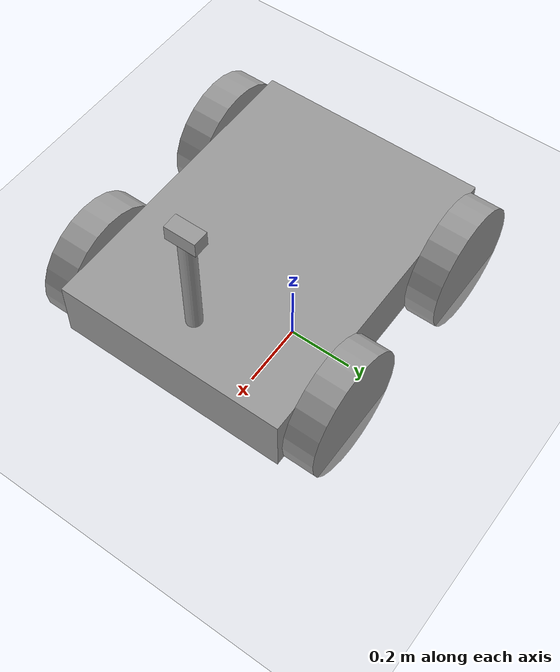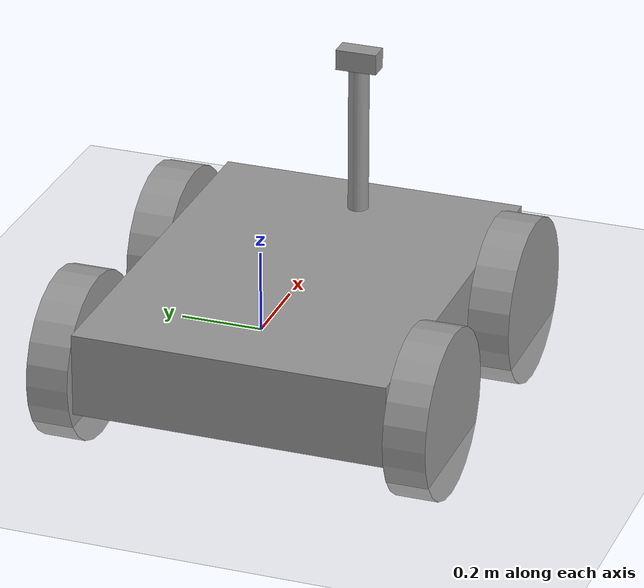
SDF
<sdf version="1.7">
 <world name="test_world">
  <include><uri>https://fuel.gazebosim.org/1.0/OpenRobotics/models/Sun</uri></include>
  <include><uri>https://fuel.gazebosim.org/1.0/OpenRobotics/models/Ground Plane</uri></include>
  <include><pose>0 0 0.4 0 0 0</pose><uri>../models/land_robot</uri></include>
  <plugin filename="ignition-gazebo-physics-system" name="ignition::gazebo::systems::Physics"/>
  <plugin filename="ignition-gazebo-sensors-system" name="ignition::gazebo::systems::Sensors">
   <render_engine>ogre</render_engine>
  </plugin>
  <plugin filename="ignition-gazebo-user-commands-system" name="ignition::gazebo::systems::UserCommands"/>
  <plugin filename="ignition-gazebo-scene-broadcaster-system" name="ignition::gazebo::systems::SceneBroadcaster"/>
 </world>
</sdf>

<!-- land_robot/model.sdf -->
<sdf version='1.7'>
    <model name='land_robot'>
        <pose>0 0 0.5 0 0.0 3.14</pose>
        <link name='chasis'>
          <inertial>
              <mass>5</mass>
              <inertia>
                <ixx>0.166667</ixx>
                <ixy>0</ixy>
                <ixz>0</ixz>
                <iyy>0.166667</iyy>
                <iyz>0</iyz>
                <izz>0.166667</izz>
              </inertia>
              <pose>0 0 0 0 -0 0</pose>
          </inertial>
          <pose>-0.110726 -0.145588 -0.265574 0 -0 0</pose>
          <gravity>1</gravity>
          <self_collide>0</self_collide>
          <kinematic>0</kinematic>
          <enable_wind>0</enable_wind>
          <visual name='visual'>
            <pose>0 0 0 0 -0 0</pose>
            <geometry>
              <box>
                <size>1 0.75 0.2</size>
              </box>
            </geometry>
            <material>
              <lighting>1</lighting>
              <script>
                <uri>file://media/materials/scripts/gazebo.material</uri>
                <name>Gazebo/Grey</name>
              </script>
              <shader type='pixel'>
                <normal_map>__default__</normal_map>
              </shader>
              <ambient>0.1 0.1 0.1 1</ambient>
              <diffuse>0.1 0.1 0.1 1</diffuse>
              <specular>0.1 0.1 0.1 1</specular>
              <emissive>0 0 0 1</emissive>
            </material>
            <transparency>0</transparency>
            <cast_shadows>1</cast_shadows>
          </visual>
          <collision name='collision'>
            <laser_retro>0</laser_retro>
            <max_contacts>10</max_contacts>
            <pose>0 0 0 0 -0 0</pose>
            <geometry>
              <box>
                <size>1 0.75 0.2</size>
              </box>
            </geometry>
            <surface>
              <friction>
                <ode>
                  <mu>1</mu>
                  <mu2>1</mu2>
                  <fdir1>0 0 0</fdir1>
                  <slip1>0</slip1>
                  <slip2>0</slip2>
                </ode>
                <torsional>
                  <coefficient>1</coefficient>
                  <patch_radius>0</patch_radius>
                  <surface_radius>0</surface_radius>
                  <use_patch_radius>1</use_patch_radius>
                  <ode>
                    <slip>0</slip>
                  </ode>
                </torsional>
              </friction>
              <bounce>
                <restitution_coefficient>0</restitution_coefficient>
                <threshold>1e+06</threshold>
              </bounce>
              <contact>
                <collide_without_contact>0</collide_without_contact>
                <collide_without_contact_bitmask>1</collide_without_contact_bitmask>
                <collide_bitmask>1</collide_bitmask>
                <ode>
                  <soft_cfm>0</soft_cfm>
                  <soft_erp>0.2</soft_erp>
                  <kp>1e+13</kp>
                  <kd>1</kd>
                  <max_vel>0.01</max_vel>
                  <min_depth>0</min_depth>
                </ode>
                <bullet>
                  <split_impulse>1</split_impulse>
                  <split_impulse_penetration_threshold>-0.01</split_impulse_penetration_threshold>
                  <soft_cfm>0</soft_cfm>
                  <soft_erp>0.2</soft_erp>
                  <kp>1e+13</kp>
                  <kd>1</kd>
                </bullet>
              </contact>
            </surface>
          </collision>
        </link>
        <link name='rueda_der_tras'>
          <inertial>
            <mass>5</mass>
            <inertia>
              <ixx>0.145833</ixx>
              <ixy>0</ixy>
              <ixz>0</ixz>
              <iyy>0.145833</iyy>
              <iyz>0</iyz>
              <izz>0.125</izz>
            </inertia>
            <pose>0 0 0 0 -0 0</pose>
          </inertial>
          <pose>-0.437626 -0.571744 -0.298299 1.5708 -0 0</pose>
          <gravity>1</gravity>
          <self_collide>0</self_collide>
          <kinematic>0</kinematic>
          <enable_wind>0</enable_wind>
          <visual name='visual'>
            <pose>0 0 0 0 -0 0</pose>
            <geometry>
              <cylinder>
                <radius>0.2</radius>
                <length>0.1</length>
              </cylinder>
            </geometry>
            <material>
              <lighting>1</lighting>
              <script>
                <uri>file://media/materials/scripts/gazebo.material</uri>
                <name>Gazebo/Grey</name>
              </script>
              <shader type='pixel'>
                <normal_map>__default__</normal_map>
              </shader>
              <ambient>0.3 0.3 0.3 1</ambient>
              <diffuse>0.7 0.7 0.7 1</diffuse>
              <specular>0.01 0.01 0.01 1</specular>
              <emissive>0 0 0 1</emissive>
            </material>
            <transparency>0</transparency>
            <cast_shadows>1</cast_shadows>
          </visual>
          <collision name='collision'>
            <laser_retro>0</laser_retro>
            <max_contacts>10</max_contacts>
            <pose>0 0 0 0 -0 0</pose>
            <geometry>
              <cylinder>
                <radius>0.2</radius>
                <length>0.1</length>
              </cylinder>
            </geometry>
            <surface>
              <friction>
                <ode>
                  <mu>0.1</mu>
                  <mu2>0.1</mu2>
                  <fdir1>0 0 0</fdir1>
                  <slip1>0</slip1>
                  <slip2>0</slip2>
                </ode>
                <torsional>
                  <coefficient>1</coefficient>
                  <patch_radius>0</patch_radius>
                  <surface_radius>0</surface_radius>
                  <use_patch_radius>1</use_patch_radius>
                  <ode>
                    <slip>0</slip>
                  </ode>
                </torsional>
              </friction>
              <bounce>
                <restitution_coefficient>0</restitution_coefficient>
                <threshold>1e+06</threshold>
              </bounce>
              <contact>
                <collide_without_contact>0</collide_without_contact>
                <collide_without_contact_bitmask>1</collide_without_contact_bitmask>
                <collide_bitmask>1</collide_bitmask>
                <ode>
                  <soft_cfm>0</soft_cfm>
                  <soft_erp>0.2</soft_erp>
                  <kp>1e+13</kp>
                  <kd>1</kd>
                  <max_vel>0.01</max_vel>
                  <min_depth>0</min_depth>
                </ode>
                <bullet>
                  <split_impulse>1</split_impulse>
                  <split_impulse_penetration_threshold>-0.01</split_impulse_penetration_threshold>
                  <soft_cfm>0</soft_cfm>
                  <soft_erp>0.2</soft_erp>
                  <kp>1e+13</kp>
                  <kd>1</kd>
                </bullet>
              </contact>
            </surface>
          </collision>
        </link>
        <link name='rueda_der_del'>
          <inertial>
            <mass>5</mass>
            <inertia>
              <ixx>0.145833</ixx>
              <ixy>0</ixy>
              <ixz>0</ixz>
              <iyy>0.145833</iyy>
              <iyz>0</iyz>
              <izz>0.125</izz>
            </inertia>
            <pose>0 0 0 0 -0 0</pose>
          </inertial>
          <pose>0.171311 -0.571744 -0.298299 1.5708 -0 0</pose>
          <gravity>1</gravity>
          <self_collide>0</self_collide>
          <kinematic>0</kinematic>
          <enable_wind>0</enable_wind>
          <visual name='visual'>
            <pose>0 0 0 0 -0 0</pose>
            <geometry>
              <cylinder>
                <radius>0.2</radius>
                <length>0.1</length>
              </cylinder>
            </geometry>
            <material>
              <lighting>1</lighting>
              <script>
                <uri>file://media/materials/scripts/gazebo.material</uri>
                <name>Gazebo/Grey</name>
              </script>
              <shader type='pixel'>
                <normal_map>__default__</normal_map>
              </shader>
              <ambient>0.3 0.3 0.3 1</ambient>
              <diffuse>0.7 0.7 0.7 1</diffuse>
              <specular>0.01 0.01 0.01 1</specular>
              <emissive>0 0 0 1</emissive>
            </material>
            <transparency>0</transparency>
            <cast_shadows>1</cast_shadows>
          </visual>
          <collision name='collision'>
            <laser_retro>0</laser_retro>
            <max_contacts>10</max_contacts>
            <pose>0 0 0 0 -0 0</pose>
            <geometry>
              <cylinder>
                <radius>0.2</radius>
                <length>0.1</length>
              </cylinder>
            </geometry>
            <surface>
              <friction>
                <ode>
                  <mu>1</mu>
                  <mu2>1</mu2>
                  <fdir1>0 0 0</fdir1>
                  <slip1>0</slip1>
                  <slip2>0</slip2>
                </ode>
                <torsional>
                  <coefficient>1</coefficient>
                  <patch_radius>0</patch_radius>
                  <surface_radius>0</surface_radius>
                  <use_patch_radius>1</use_patch_radius>
                  <ode>
                    <slip>0</slip>
                  </ode>
                </torsional>
              </friction>
              <bounce>
                <restitution_coefficient>0</restitution_coefficient>
                <threshold>1e+06</threshold>
              </bounce>
              <contact>
                <collide_without_contact>0</collide_without_contact>
                <collide_without_contact_bitmask>1</collide_without_contact_bitmask>
                <collide_bitmask>1</collide_bitmask>
                <ode>
                  <soft_cfm>0</soft_cfm>
                  <soft_erp>0.2</soft_erp>
                  <kp>1e+13</kp>
                  <kd>1</kd>
                  <max_vel>0.01</max_vel>
                  <min_depth>0</min_depth>
                </ode>
                <bullet>
                  <split_impulse>1</split_impulse>
                  <split_impulse_penetration_threshold>-0.01</split_impulse_penetration_threshold>
                  <soft_cfm>0</soft_cfm>
                  <soft_erp>0.2</soft_erp>
                  <kp>1e+13</kp>
                  <kd>1</kd>
                </bullet>
              </contact>
            </surface>
          </collision>
        </link>
        <link name='rueda_izq_tras'>
          <inertial>
            <mass>5</mass>
            <inertia>
              <ixx>0.145833</ixx>
              <ixy>0</ixy>
              <ixz>0</ixz>
              <iyy>0.145833</iyy>
              <iyz>0</iyz>
              <izz>0.125</izz>
            </inertia>
            <pose>0 0 0 0 -0 0</pose>
          </inertial>
          <pose>-0.437626 0.280995 -0.298299 1.5708 -0 0</pose>
          <gravity>1</gravity>
          <self_collide>0</self_collide>
          <kinematic>0</kinematic>
          <enable_wind>0</enable_wind>
          <visual name='visual'>
            <pose>0 0 0 0 -0 0</pose>
            <geometry>
              <cylinder>
                <radius>0.2</radius>
                <length>0.1</length>
              </cylinder>
            </geometry>
            <material>
              <lighting>1</lighting>
              <script>
                <uri>file://media/materials/scripts/gazebo.material</uri>
                <name>Gazebo/Grey</name>
              </script>
              <shader type='pixel'>
                <normal_map>__default__</normal_map>
              </shader>
              <ambient>0.3 0.3 0.3 1</ambient>
              <diffuse>0.7 0.7 0.7 1</diffuse>
              <specular>0.01 0.01 0.01 1</specular>
              <emissive>0 0 0 1</emissive>
            </material>
            <transparency>0</transparency>
            <cast_shadows>1</cast_shadows>
          </visual>
          <collision name='collision'>
            <laser_retro>0</laser_retro>
            <max_contacts>10</max_contacts>
            <pose>0 0 0 0 -0 0</pose>
            <geometry>
              <cylinder>
                <radius>0.2</radius>
                <length>0.1</length>
              </cylinder>
            </geometry>
            <surface>
              <friction>
                <ode>
                  <mu>0.1</mu>
                  <mu2>0.1</mu2>
                  <fdir1>0 0 0</fdir1>
                  <slip1>0</slip1>
                  <slip2>0</slip2>
                </ode>
                <torsional>
                  <coefficient>1</coefficient>
                  <patch_radius>0</patch_radius>
                  <surface_radius>0</surface_radius>
                  <use_patch_radius>1</use_patch_radius>
                  <ode>
                    <slip>0</slip>
                  </ode>
                </torsional>
              </friction>
              <bounce>
                <restitution_coefficient>0</restitution_coefficient>
                <threshold>1e+06</threshold>
              </bounce>
              <contact>
                <collide_without_contact>0</collide_without_contact>
                <collide_without_contact_bitmask>1</collide_without_contact_bitmask>
                <collide_bitmask>1</collide_bitmask>
                <ode>
                  <soft_cfm>0</soft_cfm>
                  <soft_erp>0.2</soft_erp>
                  <kp>1e+13</kp>
                  <kd>1</kd>
                  <max_vel>0.01</max_vel>
                  <min_depth>0</min_depth>
                </ode>
                <bullet>
                  <split_impulse>1</split_impulse>
                  <split_impulse_penetration_threshold>-0.01</split_impulse_penetration_threshold>
                  <soft_cfm>0</soft_cfm>
                  <soft_erp>0.2</soft_erp>
                  <kp>1e+13</kp>
                  <kd>1</kd>
                </bullet>
              </contact>
            </surface>
          </collision>
        </link>
        <link name='rueda_izq_del'>
          <inertial>
            <mass>5</mass>
            <inertia>
              <ixx>0.145833</ixx>
              <ixy>0</ixy>
              <ixz>0</ixz>
              <iyy>0.145833</iyy>
              <iyz>0</iyz>
              <izz>0.125</izz>
            </inertia>
            <pose>0 0 0 0 -0 0</pose>
          </inertial>
          <pose>0.171311 0.280995 -0.298299 1.5708 -0 0</pose>
          <gravity>1</gravity>
          <self_collide>0</self_collide>
          <kinematic>0</kinematic>
          <enable_wind>0</enable_wind>
          <visual name='visual'>
            <pose>0 0 0 0 -0 0</pose>
            <geometry>
              <cylinder>
                <radius>0.2</radius>
                <length>0.1</length>
              </cylinder>
            </geometry>
            <material>
              <lighting>1</lighting>
              <script>
                <uri>file://media/materials/scripts/gazebo.material</uri>
                <name>Gazebo/Grey</name>
              </script>
              <shader type='pixel'>
                <normal_map>__default__</normal_map>
              </shader>
              <ambient>0.3 0.3 0.3 1</ambient>
              <diffuse>0.7 0.7 0.7 1</diffuse>
              <specular>0.01 0.01 0.01 1</specular>
              <emissive>0 0 0 1</emissive>
            </material>
            <transparency>0</transparency>
            <cast_shadows>1</cast_shadows>
          </visual>
          <collision name='collision'>
            <laser_retro>0</laser_retro>
            <max_contacts>10</max_contacts>
            <pose>0 0 0 0 -0 0</pose>
            <geometry>
              <cylinder>
                <radius>0.2</radius>
                <length>0.1</length>
              </cylinder>
            </geometry>
            <surface>
              <friction>
                <ode>
                  <mu>1</mu>
                  <mu2>1</mu2>
                  <fdir1>0 0 0</fdir1>
                  <slip1>0</slip1>
                  <slip2>0</slip2>
                </ode>
                <torsional>
                  <coefficient>1</coefficient>
                  <patch_radius>0</patch_radius>
                  <surface_radius>0</surface_radius>
                  <use_patch_radius>1</use_patch_radius>
                  <ode>
                    <slip>0</slip>
                  </ode>
                </torsional>
              </friction>
              <bounce>
                <restitution_coefficient>0</restitution_coefficient>
                <threshold>1e+06</threshold>
              </bounce>
              <contact>
                <collide_without_contact>0</collide_without_contact>
                <collide_without_contact_bitmask>1</collide_without_contact_bitmask>
                <collide_bitmask>1</collide_bitmask>
                <ode>
                  <soft_cfm>0</soft_cfm>
                  <soft_erp>0.2</soft_erp>
                  <kp>1e+13</kp>
                  <kd>1</kd>
                  <max_vel>0.01</max_vel>
                  <min_depth>0</min_depth>
                </ode>
                <bullet>
                  <split_impulse>1</split_impulse>
                  <split_impulse_penetration_threshold>-0.01</split_impulse_penetration_threshold>
                  <soft_cfm>0</soft_cfm>
                  <soft_erp>0.2</soft_erp>
                  <kp>1e+13</kp>
                  <kd>1</kd>
                </bullet>
              </contact>
            </surface>
          </collision>
        </link>
        <link name='soporte_camara'>
          <inertial>
            <mass>1</mass>
            <inertia>
              <ixx>0.145833</ixx>
              <ixy>0</ixy>
              <ixz>0</ixz>
              <iyy>0.145833</iyy>
              <iyz>0</iyz>
              <izz>0.125</izz>
            </inertia>
            <pose>0 0 0 0 -0 0</pose>
          </inertial>
          <pose>0.250663 -0.155261 0.031715 0 -0 0</pose>
          <gravity>1</gravity>
          <self_collide>0</self_collide>
          <kinematic>0</kinematic>
          <enable_wind>0</enable_wind>
          <visual name='visual'>
            <pose>0 0 0 0 -0 0</pose>
            <geometry>
              <cylinder>
                <radius>0.025</radius>
                <length>0.4</length>
              </cylinder>
            </geometry>
            <material>
              <lighting>1</lighting>
              <script>
                <uri>file://media/materials/scripts/gazebo.material</uri>
                <name>Gazebo/Grey</name>
              </script>
              <shader type='pixel'>
                <normal_map>__default__</normal_map>
              </shader>
              <ambient>0.3 0.3 0.3 1</ambient>
              <diffuse>0.7 0.7 0.7 1</diffuse>
              <specular>0.01 0.01 0.01 1</specular>
              <emissive>0 0 0 1</emissive>
            </material>
            <transparency>0</transparency>
            <cast_shadows>1</cast_shadows>
          </visual>
          <collision name='collision'>
            <laser_retro>0</laser_retro>
            <max_contacts>10</max_contacts>
            <pose>0 0 0 0 -0 0</pose>
            <geometry>
              <cylinder>
                <radius>0.025</radius>
                <length>0.4</length>
              </cylinder>
            </geometry>
            <surface>
              <friction>
                <ode>
                  <mu>0.1</mu>
                  <mu2>0.1</mu2>
                  <fdir1>0 0 0</fdir1>
                  <slip1>0</slip1>
                  <slip2>0</slip2>
                </ode>
                <torsional>
                  <coefficient>1</coefficient>
                  <patch_radius>0</patch_radius>
                  <surface_radius>0</surface_radius>
                  <use_patch_radius>1</use_patch_radius>
                  <ode>
                    <slip>0</slip>
                  </ode>
                </torsional>
              </friction>
              <bounce>
                <restitution_coefficient>0</restitution_coefficient>
                <threshold>1e+06</threshold>
              </bounce>
              <contact>
                <collide_without_contact>0</collide_without_contact>
                <collide_without_contact_bitmask>1</collide_without_contact_bitmask>
                <collide_bitmask>1</collide_bitmask>
                <ode>
                  <soft_cfm>0</soft_cfm>
                  <soft_erp>0.2</soft_erp>
                  <kp>1e+13</kp>
                  <kd>1</kd>
                  <max_vel>0.01</max_vel>
                  <min_depth>0</min_depth>
                </ode>
                <bullet>
                  <split_impulse>1</split_impulse>
                  <split_impulse_penetration_threshold>-0.01</split_impulse_penetration_threshold>
                  <soft_cfm>0</soft_cfm>
                  <soft_erp>0.2</soft_erp>
                  <kp>1e+13</kp>
                  <kd>1</kd>
                </bullet>
              </contact>
            </surface>
          </collision>
        </link>
        <link name='camara'>
          <inertial>
              <mass>1</mass>
              <inertia>
                <ixx>0.166667</ixx>
                <ixy>0</ixy>
                <ixz>0</ixz>
                <iyy>0.166667</iyy>
                <iyz>0</iyz>
                <izz>0.166667</izz>
              </inertia>
              <pose>0 0 0 0 -0 0</pose>
          </inertial>
          <pose>0.250663 -0.155261 0.22 0 -0 0</pose>
          <gravity>1</gravity>
          <self_collide>0</self_collide>
          <kinematic>0</kinematic>
          <enable_wind>0</enable_wind>
          <visual name='visual'>
            <pose>0 0 0 0 -0 0</pose>
            <geometry>
              <box>
                <size>0.050000 0.100000 0.05000</size>
              </box>
            </geometry>
            <material>
              <lighting>1</lighting>
              <script>
                <uri>file://media/materials/scripts/gazebo.material</uri>
                <name>Gazebo/Grey</name>
              </script>
              <shader type='pixel'>
                <normal_map>__default__</normal_map>
              </shader>
              <ambient>0.1 0.1 0.1 1</ambient>
              <diffuse>0.1 0.1 0.1 1</diffuse>
              <specular>0.1 0.1 0.1 1</specular>
              <emissive>0 0 0 1</emissive>
            </material>
            <transparency>0</transparency>
            <cast_shadows>1</cast_shadows>
          </visual>
          <collision name='collision'>
            <laser_retro>0</laser_retro>
            <max_contacts>10</max_contacts>
            <pose>0 0 0 0 -0 0</pose>
            <geometry>
              <box>
                <size>0.050000 0.100000 0.050000</size>
              </box>
            </geometry>
            <surface>
              <friction>
                <ode>
                  <mu>1</mu>
                  <mu2>1</mu2>
                  <fdir1>0 0 0</fdir1>
                  <slip1>0</slip1>
                  <slip2>0</slip2>
                </ode>
                <torsional>
                  <coefficient>1</coefficient>
                  <patch_radius>0</patch_radius>
                  <surface_radius>0</surface_radius>
                  <use_patch_radius>1</use_patch_radius>
                  <ode>
                    <slip>0</slip>
                  </ode>
                </torsional>
              </friction>
              <bounce>
                <restitution_coefficient>0</restitution_coefficient>
                <threshold>1e+06</threshold>
              </bounce>
              <contact>
                <collide_without_contact>0</collide_without_contact>
                <collide_without_contact_bitmask>1</collide_without_contact_bitmask>
                <collide_bitmask>1</collide_bitmask>
                <ode>
                  <soft_cfm>0</soft_cfm>
                  <soft_erp>0.2</soft_erp>
                  <kp>1e+13</kp>
                  <kd>1</kd>
                  <max_vel>0.01</max_vel>
                  <min_depth>0</min_depth>
                </ode>
                <bullet>
                  <split_impulse>1</split_impulse>
                  <split_impulse_penetration_threshold>-0.01</split_impulse_penetration_threshold>
                  <soft_cfm>0</soft_cfm>
                  <soft_erp>0.2</soft_erp>
                  <kp>1e+13</kp>
                  <kd>1</kd>
                </bullet>
              </contact>
            </surface>
          </collision>
          <sensor name="camera" type="camera">
            <camera>
                <horizontal_fov>1.047</horizontal_fov>
                <image>
                    <width>640</width>
                    <height>840</height>
                </image>
                <clip>
                    <near>0.1</near>
                    <far>100</far>
                </clip>
            </camera>

            <always_on>1</always_on>
            <update_rate>30</update_rate>
            <visualize>true</visualize>
            <topic>camera</topic>

          </sensor>
        </link>
        <joint name='chasis_JOINT_rueda_der_tras' type='revolute'>
          <parent>chasis</parent>
          <child>rueda_der_tras</child>
          <pose>0 0 0 0 -0 0</pose>
          <axis>
            <xyz>0 0 -1</xyz>
            <limit>
              <lower>-1.79769e+308</lower>
              <upper>1.79769e+308</upper>
              <effort>-1</effort>
              <velocity>-1</velocity>
            </limit>
            <dynamics>
              <spring_reference>0</spring_reference>
              <spring_stiffness>0</spring_stiffness>
              <damping>0</damping>
              <friction>0</friction>
            </dynamics>
          </axis>
          <physics>
            <ode>
              <limit>
                <cfm>0</cfm>
                <erp>0.2</erp>
              </limit>
              <suspension>
                <cfm>0</cfm>
                <erp>0.2</erp>
              </suspension>
            </ode>
          </physics>
        </joint>
        <joint name='chasis_JOINT_rueda_der_del' type='revolute'>
          <parent>chasis</parent>
          <child>rueda_der_del</child>
          <pose>0 0 0 0 -0 0</pose>
          <axis>
            <xyz>0 0 -1</xyz>
            <limit>
              <lower>-1.79769e+308</lower>
              <upper>1.79769e+308</upper>
              <effort>-1</effort>
              <velocity>-1</velocity>
            </limit>
            <dynamics>
              <spring_reference>0</spring_reference>
              <spring_stiffness>0</spring_stiffness>
              <damping>0</damping>
            </dynamics>
          </axis>
          <physics>
            <ode>
              <limit>
                <cfm>0</cfm>
                <erp>0.2</erp>
              </limit>
              <suspension>
                <cfm>0</cfm>
                <erp>0.2</erp>
              </suspension>
            </ode>
          </physics>
        </joint>
        <joint name='chasis_JOINT_rueda_izq_tras' type='revolute'>
          <parent>chasis</parent>
          <child>rueda_izq_tras</child>
          <pose>0 0 0 0 -0 0</pose>
          <axis>
            <xyz>-0 -0 -1</xyz>
            <limit>
              <lower>-1.79769e+308</lower>
              <upper>1.79769e+308</upper>
              <effort>-1</effort>
              <velocity>-1</velocity>
            </limit>
            <dynamics>
              <spring_reference>0</spring_reference>
              <spring_stiffness>0</spring_stiffness>
              <damping>0</damping>
            </dynamics>
          </axis>
          <physics>
            <ode>
              <limit>
                <cfm>0</cfm>
                <erp>0.2</erp>
              </limit>
              <suspension>
                <cfm>0</cfm>
                <erp>0.2</erp>
              </suspension>
            </ode>
          </physics>
        </joint>
        <joint name='chasis_JOINT_rueda_izq_del' type='revolute'>
          <parent>chasis</parent>
          <child>rueda_izq_del</child>
          <pose>0 0 0 0 -0 0</pose>
          <axis>
            <xyz>-0 -0 -1</xyz>
            <limit>
              <lower>-1.79769e+308</lower>
              <upper>1.79769e+308</upper>
              <effort>-1</effort>
              <velocity>-1</velocity>
            </limit>
            <dynamics>
              <spring_reference>0</spring_reference>
              <spring_stiffness>0</spring_stiffness>
              <damping>0</damping>
            </dynamics>
          </axis>
          <physics>
            <ode>
              <limit>
                <cfm>0</cfm>
                <erp>0.2</erp>
              </limit>
              <suspension>
                <cfm>0</cfm>
                <erp>0.2</erp>
              </suspension>
            </ode>
          </physics>
        </joint>
        <joint name='chasis_JOINT_soporte_camara' type='revolute'>
          <parent>chasis</parent>
          <child>soporte_camara</child>
          <pose>0 0 0 0 -0 0</pose>
          <axis>
            <xyz>-0 -0 -1</xyz>
            <limit>
              <lower>-1.79769e+308</lower>
              <upper>1.79769e+308</upper>
              <effort>-1</effort>
              <velocity>-1</velocity>
            </limit>
            <dynamics>
              <spring_reference>0</spring_reference>
              <spring_stiffness>0</spring_stiffness>
              <damping>0</damping>
            </dynamics>
          </axis>
          <physics>
            <ode>
              <limit>
                <cfm>0</cfm>
                <erp>0.2</erp>
              </limit>
              <suspension>
                <cfm>0</cfm>
                <erp>0.2</erp>
              </suspension>
            </ode>
          </physics>
        </joint>
        <joint name='chasis_JOINT_camara' type='fixed'>
          <parent>soporte_camara</parent>
          <child>camara</child>
          <pose>0 0 0 0 -0 0</pose>
          <axis>
            <xyz>-0 -0 -1</xyz>
            <limit>
              <lower>-1.79769e+308</lower>
              <upper>1.79769e+308</upper>
              <effort>-1</effort>
              <velocity>-1</velocity>
            </limit>
            <dynamics>
              <spring_reference>0</spring_reference>
              <spring_stiffness>0</spring_stiffness>
              <damping>0</damping>
            </dynamics>
          </axis>
          <physics>
            <ode>
              <limit>
                <cfm>0</cfm>
                <erp>0.2</erp>
              </limit>
              <suspension>
                <cfm>0</cfm>
                <erp>0.2</erp>
              </suspension>
            </ode>
          </physics>
        </joint>
        <static>0</static>
        <allow_auto_disable>1</allow_auto_disable>

        <plugin
            filename="ignition-gazebo-diff-drive-system"
            name="ignition::gazebo::systems::DiffDrive">
            <left_joint>chasis_JOINT_rueda_izq_del</left_joint>
            <right_joint>chasis_JOINT_rueda_der_del</right_joint>
            <wheel_separation>0.75</wheel_separation>
            <wheel_radius>0.25</wheel_radius>
            <max_linear_acceleration>1</max_linear_acceleration>
            <min_linear_acceleration>-1</min_linear_acceleration>
            <max_angular_acceleration>2</max_angular_acceleration>
            <min_angular_acceleration>-2</min_angular_acceleration>
            <max_linear_velocity>0.5</max_linear_velocity>
            <min_linear_velocity>-0.5</min_linear_velocity>
            <max_angular_velocity>1</max_angular_velocity>
            <min_angular_velocity>-1</min_angular_velocity>
            <topic>/cmd_vel</topic>
        </plugin>

        <plugin
            filename="ignition-gazebo-joint-position-controller-system"
            name="ignition::gazebo::systems::JointPositionController">
            <joint_name>chasis_JOINT_soporte_camara</joint_name>
            <topic>cmd_camera</topic>
            <p_gain>3.5</p_gain>
            <i_gain>0.01</i_gain>
            <d_gain>2</d_gain>
            <i_max>1</i_max>
            <i_min>-1</i_min>
            <cmd_max>1000</cmd_max>
            <cmd_min>-1000</cmd_min>
        </plugin>

    </model>

</sdf>
